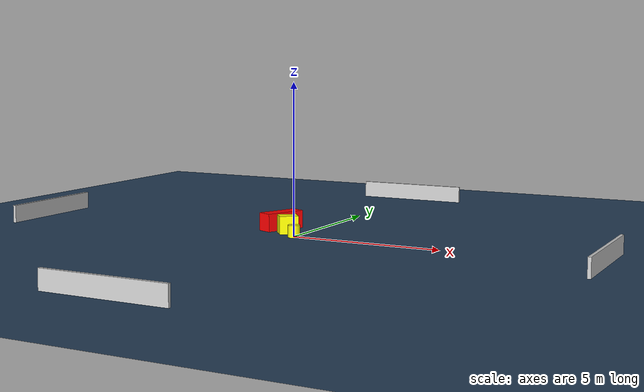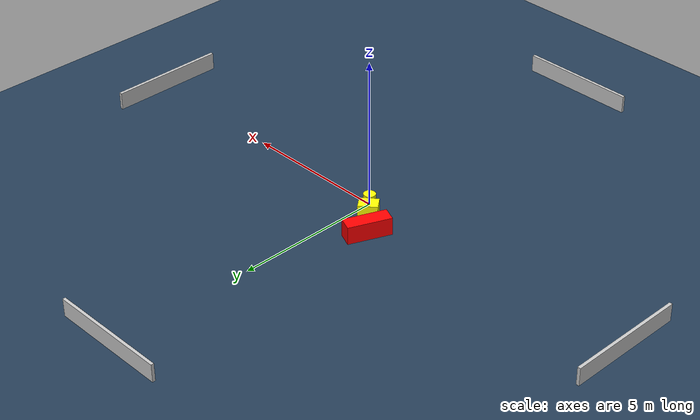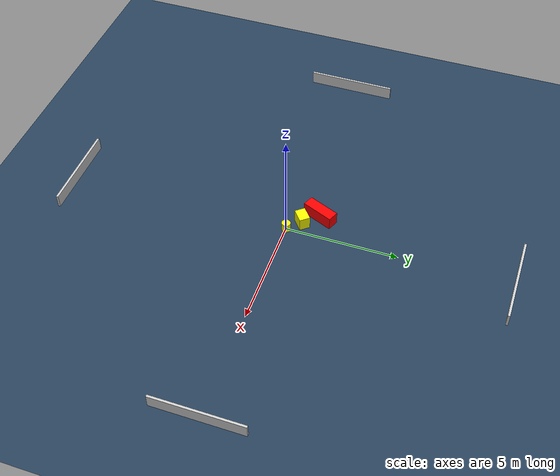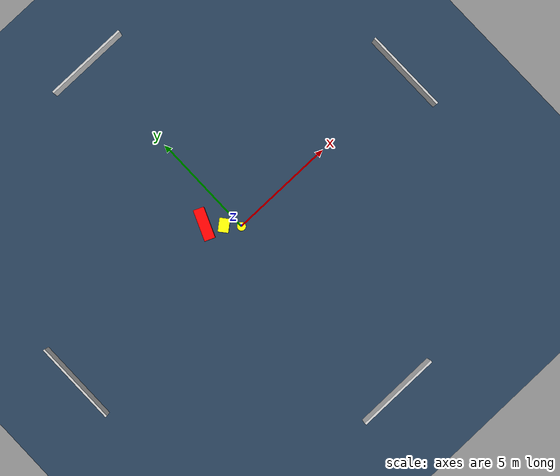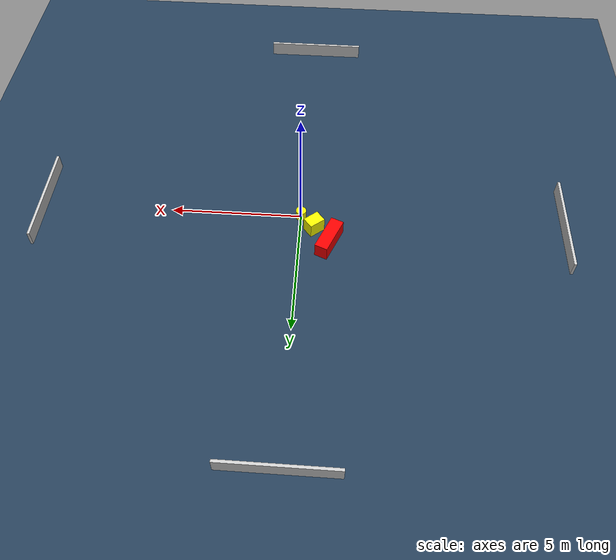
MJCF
<?xml version="1.0" ?>
<mujoco model="generated_environment">
  <option timestep="0.01" integrator="RK4" cone="elliptic"/>
  <default>
    <geom density="1"/>
  </default>
  <asset>
    <texture builtin="gradient" height="3072" name="skybox" rgb1="0.3 0.5 0.7" rgb2="0 0 0" type="skybox" width="512"/>
    <texture builtin="checker" height="300" name="groundplane" rgb1="0.2 0.3 0.4" rgb2="0.1 0.2 0.3" type="2d" width="300"/>
    <material name="groundplane" reflectance="0.2" texrepeat="5 5" texture="groundplane"/>
  </asset>
  <worldbody>
    <light dir="0 0 -1" directional="true" pos="0 0 1.5"/>
    <geom condim="3" friction="0.5 0.005 0.001" material="groundplane" name="floor" pos="0 0 0" size="0 0 0.05" type="plane"/>
    <body name="walls">
      <geom name="wall_1" condim="4" pos="-10.0 0.0 0.3" rgba="0.800000011920929 0.800000011920929 0.800000011920929 1.0" size="0.05 2.0 0.3" type="box"/>
      <geom name="wall_2" condim="4" pos="10.0 0.0 0.3" rgba="0.800000011920929 0.800000011920929 0.800000011920929 1.0" size="0.05 2.0 0.3" type="box"/>
      <geom name="wall_3" condim="4" pos="0.0 -10.0 0.3" rgba="0.800000011920929 0.800000011920929 0.800000011920929 1.0" size="2.0 0.05 0.3" type="box"/>
      <geom name="wall_4" condim="4" pos="0.0 10.0 0.3" rgba="0.800000011920929 0.800000011920929 0.800000011920929 1.0" size="2.0 0.05 0.3" type="box"/>
    </body>
    <body name="robot">
      <joint name="joint_x" type="slide" pos="0 0 0" axis="1 0 0"/>
      <joint name="joint_y" type="slide" pos="0 0 0" axis="0 1 0"/>
      <geom name="robot" type="cylinder" pos="0.0 0.0 0.2" size="0.2 0.2 0.0" mass="5.0" friction="1.0 0.005 0.0001" condim="4" rgba="1.0 1.0 0.0 1.0"/>
    </body>
    <body name="obstacle_1_movable">
      <geom name="obstacle_1_movable" condim="4" pos="-0.5304347938740239 0.5623432931801029 0.3" euler="0 0 218.94723192249126" friction="0.0 0.005 0.001" rgba="1.0 1.0 0.0 1.0" size="0.3142183892989432 0.23650178471487335 0.3" type="box" mass="0.1"/>
      <joint type="free"/>
    </body>
    <body name="obstacle_2_static">
      <geom name="obstacle_2_static" condim="4" pos="-1.127599095339224 1.2002667025235958 0.3" euler="0 0 247.2207025776719" friction="0.0 0.005 0.001" rgba="1.0 0.0 0.0 1.0" size="0.7242533300405762 0.24941699238702617 0.3" type="box"/>
    </body>
  </worldbody>
  <actuator>
    <motor name="actuator_x" joint="joint_x" gear="1" ctrlrange="-1 1"/>
    <motor name="actuator_y" joint="joint_y" gear="1" ctrlrange="-1 1"/>
  </actuator>
</mujoco>
